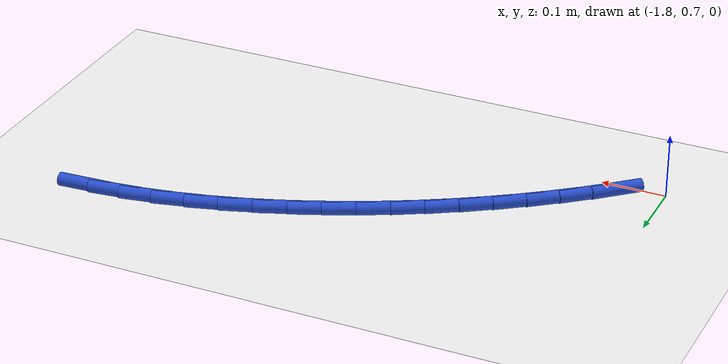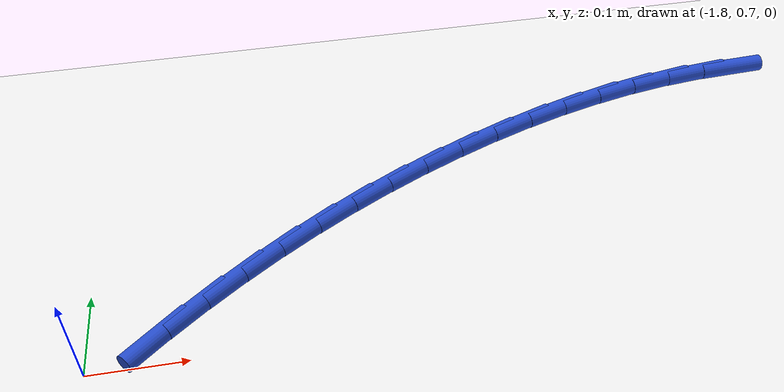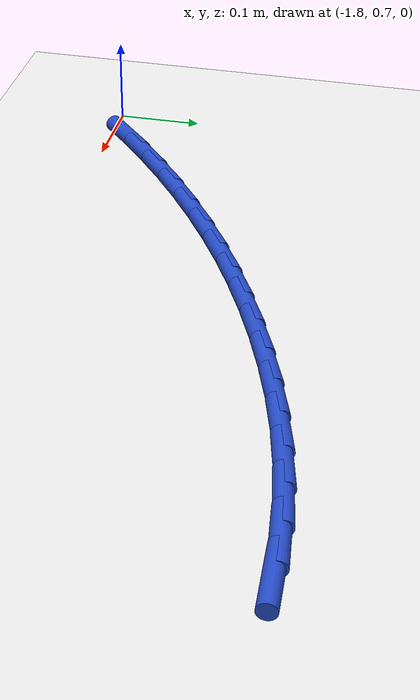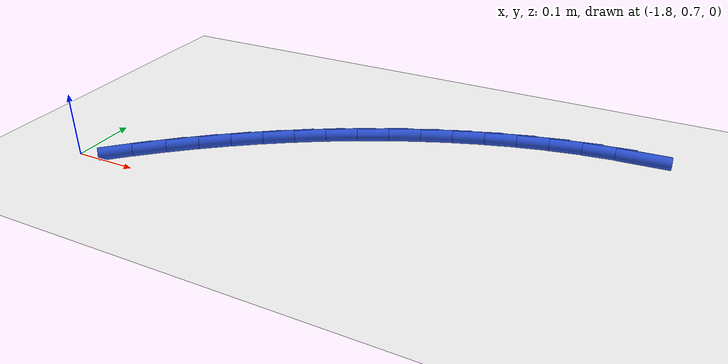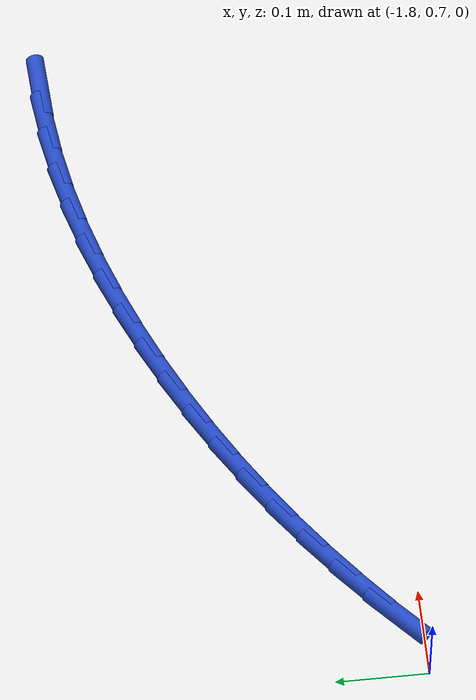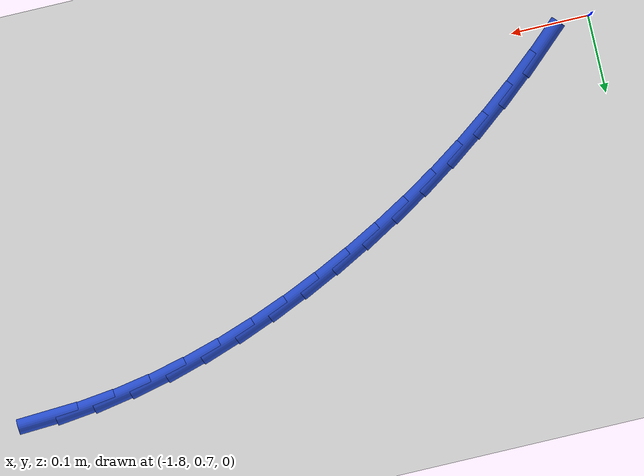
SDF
<sdf version="1.6">
 <world name="default">
  <model name="ground_plane">
   <static>1</static>
   <link name="link">
    <collision name="collision">
     <geometry><plane><normal>0 0 1</normal><size>100 100</size></plane></geometry>
     <surface><friction><ode><mu>100</mu><mu2>50</mu2></ode></friction></surface>
    </collision>
    <visual name="visual">
     <cast_shadows>0</cast_shadows>
     <geometry><plane><normal>0 0 1</normal><size>100 100</size></plane></geometry>
     <material>
      <script><uri>file://media/materials/scripts/gazebo.material</uri><name>Gazebo/WhiteGlow</name></script>
     </material>
    </visual>
   </link>
  </model>
  <model name="line">
   <link name="link_32">
    <pose>-1.0160722715920627 1.0406724207732407 0.01 0 1.57 0.05491262464725309</pose>
    <collision name="collision">
     <geometry><cylinder><radius>0.01</radius><length>0.08</length></cylinder></geometry>
    </collision>
    <visual name="visual">
     <material>
      <script><name>Gazebo/Blue</name><uri>file://media/materials/scripts/gazebo.material</uri></script>
     </material>
     <geometry><cylinder><radius>0.01</radius><length>0.08</length></cylinder></geometry>
    </visual>
   </link>
   <link name="link_33">
    <pose>-1.0652842301085657 1.0379673434602465 0.01 0 1.57 0.12010041574123106</pose>
    <collision name="collision">
     <geometry><cylinder><radius>0.01</radius><length>0.08</length></cylinder></geometry>
    </collision>
    <visual name="visual">
     <material>
      <script><name>Gazebo/Blue</name><uri>file://media/materials/scripts/gazebo.material</uri></script>
     </material>
     <geometry><cylinder><radius>0.01</radius><length>0.08</length></cylinder></geometry>
    </visual>
   </link>
   <link name="link_34">
    <pose>-1.114430589767629 1.0320363011046199 0.01 0 1.57 0.18010300503333415</pose>
    <collision name="collision">
     <geometry><cylinder><radius>0.01</radius><length>0.08</length></cylinder></geometry>
    </collision>
    <visual name="visual">
     <material>
      <script><name>Gazebo/Blue</name><uri>file://media/materials/scripts/gazebo.material</uri></script>
     </material>
     <geometry><cylinder><radius>0.01</radius><length>0.08</length></cylinder></geometry>
    </visual>
   </link>
   <link name="link_35">
    <pose>-1.1633721860528332 1.0231252136199103 0.01 0 1.57 0.2351903043209934</pose>
    <collision name="collision">
     <geometry><cylinder><radius>0.01</radius><length>0.08</length></cylinder></geometry>
    </collision>
    <visual name="visual">
     <material>
      <script><name>Gazebo/Blue</name><uri>file://media/materials/scripts/gazebo.material</uri></script>
     </material>
     <geometry><cylinder><radius>0.01</radius><length>0.08</length></cylinder></geometry>
    </visual>
   </link>
   <link name="link_36">
    <pose>-1.2119698544477588 1.0114800009196687 0.01 0 1.57 0.285708465364302</pose>
    <collision name="collision">
     <geometry><cylinder><radius>0.01</radius><length>0.08</length></cylinder></geometry>
    </collision>
    <visual name="visual">
     <material>
      <script><name>Gazebo/Blue</name><uri>file://media/materials/scripts/gazebo.material</uri></script>
     </material>
     <geometry><cylinder><radius>0.01</radius><length>0.08</length></cylinder></geometry>
    </visual>
   </link>
   <link name="link_37">
    <pose>-1.260084430435987 0.9973465829174457 0.01 0 1.57 0.3320414326929229</pose>
    <collision name="collision">
     <geometry><cylinder><radius>0.01</radius><length>0.08</length></cylinder></geometry>
    </collision>
    <visual name="visual">
     <material>
      <script><name>Gazebo/Blue</name><uri>file://media/materials/scripts/gazebo.material</uri></script>
     </material>
     <geometry><cylinder><radius>0.01</radius><length>0.08</length></cylinder></geometry>
    </visual>
   </link>
   <link name="link_38">
    <pose>-1.3075767495010995 0.9809708795267915 0.01 0 1.57 0.3745838906564431</pose>
    <collision name="collision">
     <geometry><cylinder><radius>0.01</radius><length>0.08</length></cylinder></geometry>
    </collision>
    <visual name="visual">
     <material>
      <script><name>Gazebo/Blue</name><uri>file://media/materials/scripts/gazebo.material</uri></script>
     </material>
     <geometry><cylinder><radius>0.01</radius><length>0.08</length></cylinder></geometry>
    </visual>
   </link>
   <link name="link_39">
    <pose>-1.354307647126676 0.962598810661256 0.01 0 1.57 0.41374310347599547</pose>
    <collision name="collision">
     <geometry><cylinder><radius>0.01</radius><length>0.08</length></cylinder></geometry>
    </collision>
    <visual name="visual">
     <material>
      <script><name>Gazebo/Blue</name><uri>file://media/materials/scripts/gazebo.material</uri></script>
     </material>
     <geometry><cylinder><radius>0.01</radius><length>0.08</length></cylinder></geometry>
    </visual>
   </link>
   <link name="link_40">
    <pose>-1.4001388451660164 0.942474850920591 0.01 0 1.57 0.45097007045002196</pose>
    <collision name="collision">
     <geometry><cylinder><radius>0.01</radius><length>0.08</length></cylinder></geometry>
    </collision>
    <visual name="visual">
     <material>
      <script><name>Gazebo/Blue</name><uri>file://media/materials/scripts/gazebo.material</uri></script>
     </material>
     <geometry><cylinder><radius>0.01</radius><length>0.08</length></cylinder></geometry>
    </visual>
   </link>
   <link name="link_41">
    <pose>-1.4449842599558667 0.9207583666190768 0.01 0 1.57 0.48803629730114356</pose>
    <collision name="collision">
     <geometry><cylinder><radius>0.01</radius><length>0.08</length></cylinder></geometry>
    </collision>
    <visual name="visual">
     <material>
      <script><name>Gazebo/Blue</name><uri>file://media/materials/scripts/gazebo.material</uri></script>
     </material>
     <geometry><cylinder><radius>0.01</radius><length>0.08</length></cylinder></geometry>
    </visual>
   </link>
   <link name="link_42">
    <pose>-1.4888381464085911 0.8974777240499734 0.01 0 1.57 0.5250038573020717</pose>
    <collision name="collision">
     <geometry><cylinder><radius>0.01</radius><length>0.08</length></cylinder></geometry>
    </collision>
    <visual name="visual">
     <material>
      <script><name>Gazebo/Blue</name><uri>file://media/materials/scripts/gazebo.material</uri></script>
     </material>
     <geometry><cylinder><radius>0.01</radius><length>0.08</length></cylinder></geometry>
    </visual>
   </link>
   <link name="link_43">
    <pose>-1.531701604910852 0.8726501272812971 0.01 0 1.57 0.5617873614529906</pose>
    <collision name="collision">
     <geometry><cylinder><radius>0.01</radius><length>0.08</length></cylinder></geometry>
    </collision>
    <visual name="visual">
     <material>
      <script><name>Gazebo/Blue</name><uri>file://media/materials/scripts/gazebo.material</uri></script>
     </material>
     <geometry><cylinder><radius>0.01</radius><length>0.08</length></cylinder></geometry>
    </visual>
   </link>
   <link name="link_44">
    <pose>-1.5735757358493117 0.8462927803810637 0.01 0 1.57 0.5983043531887158</pose>
    <collision name="collision">
     <geometry><cylinder><radius>0.01</radius><length>0.08</length></cylinder></geometry>
    </collision>
    <visual name="visual">
     <material>
      <script><name>Gazebo/Blue</name><uri>file://media/materials/scripts/gazebo.material</uri></script>
     </material>
     <geometry><cylinder><radius>0.01</radius><length>0.08</length></cylinder></geometry>
    </visual>
   </link>
   <link name="link_45">
    <pose>-1.6144616396106337 0.8184228874172887 0.01 0 1.57 0.6344764285354608</pose>
    <collision name="collision">
     <geometry><cylinder><radius>0.01</radius><length>0.08</length></cylinder></geometry>
    </collision>
    <visual name="visual">
     <material>
      <script><name>Gazebo/Blue</name><uri>file://media/materials/scripts/gazebo.material</uri></script>
     </material>
     <geometry><cylinder><radius>0.01</radius><length>0.08</length></cylinder></geometry>
    </visual>
   </link>
   <link name="link_46">
    <pose>-1.65436041658148 0.7890576524579874 0.01 0 1.57 0.6702302152396431</pose>
    <collision name="collision">
     <geometry><cylinder><radius>0.01</radius><length>0.08</length></cylinder></geometry>
    </collision>
    <visual name="visual">
     <material>
      <script><name>Gazebo/Blue</name><uri>file://media/materials/scripts/gazebo.material</uri></script>
     </material>
     <geometry><cylinder><radius>0.01</radius><length>0.08</length></cylinder></geometry>
    </visual>
   </link>
   <link name="link_47">
    <pose>-1.6932731671485133 0.758214279571176 0.01 0 1.57 0.7054981839246499</pose>
    <collision name="collision">
     <geometry><cylinder><radius>0.01</radius><length>0.08</length></cylinder></geometry>
    </collision>
    <visual name="visual">
     <material>
      <script><name>Gazebo/Blue</name><uri>file://media/materials/scripts/gazebo.material</uri></script>
     </material>
     <geometry><cylinder><radius>0.01</radius><length>0.08</length></cylinder></geometry>
    </visual>
   </link>
   <link name="link_48">
    <pose>-1.7312009916983964 0.7259099728248705 0.01 0 1.57 0.7402192743665971</pose>
    <collision name="collision">
     <geometry><cylinder><radius>0.01</radius><length>0.08</length></cylinder></geometry>
    </collision>
    <visual name="visual">
     <material>
      <script><name>Gazebo/Blue</name><uri>file://media/materials/scripts/gazebo.material</uri></script>
     </material>
     <geometry><cylinder><radius>0.01</radius><length>0.08</length></cylinder></geometry>
    </visual>
   </link>
  </model>
 </world>
</sdf>
